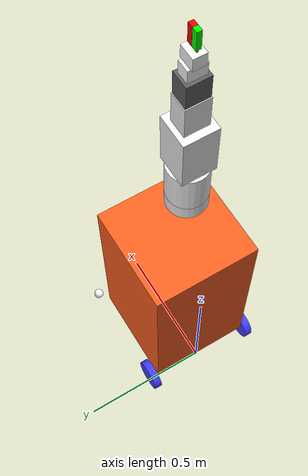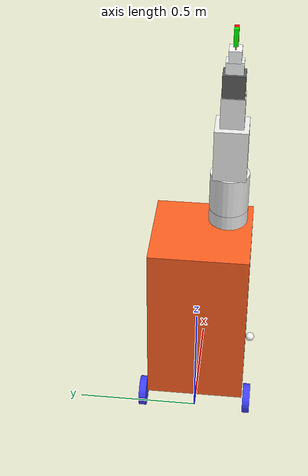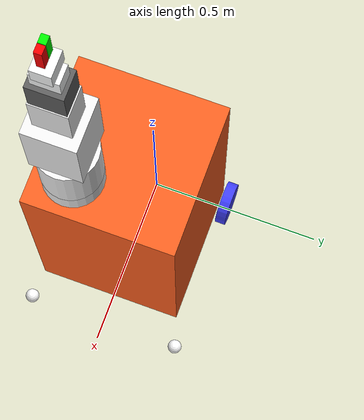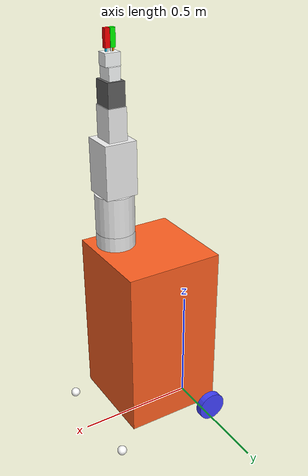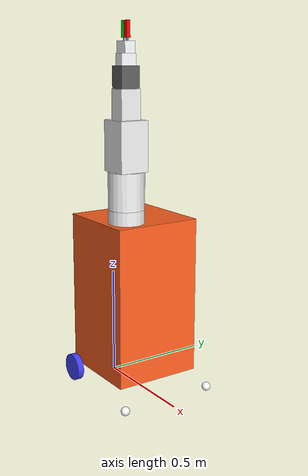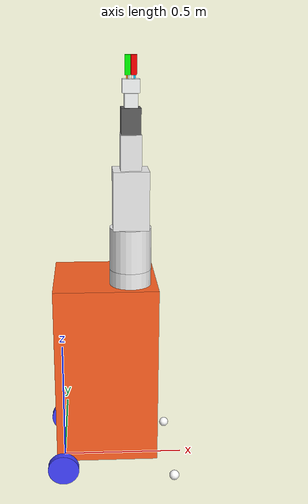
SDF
<sdf version='1.9'>
  <model name='robot_description'>
    <link name='base_link'>
      <inertial>
        <pose>0.1780559729414199 -1.243941050198591e-05 0.4466954508265594 0 0 0</pose>
        <mass>10.021246584</mass>
        <inertia>
          <ixx>0.57353490040801036</ixx>
          <ixy>1.20848873026793e-05</ixy>
          <ixz>0.0022778695219971561</ixz>
          <iyy>0.57402618883127721</iyy>
          <iyz>4.8841728212682492e-05</iyz>
          <izz>0.27587865607071232</izz>
        </inertia>
      </inertial>
      <collision name='base_link_fixed_joint_lump__chassis_collision'>
        <pose>0.1775 0 0.4475 0 0 0</pose>
        <geometry>
          <box>
            <size>0.405 0.405 0.72</size>
          </box>
        </geometry>
      </collision>
      <collision name='base_link_fixed_joint_lump__caster_wheel_collision_1'>
        <pose>0.45 0.2225 0.02000000000000001 0 0 0</pose>
        <geometry>
          <sphere>
            <radius>0.02</radius>
          </sphere>
        </geometry>
      </collision>
      <collision name='base_link_fixed_joint_lump__caster_wheel2_collision_2'>
        <pose>0.45 -0.2225 0.02000000000000001 0 0 0</pose>
        <geometry>
          <sphere>
            <radius>0.02</radius>
          </sphere>
        </geometry>
      </collision>
      <collision name='base_link_fixed_joint_lump__robot_link0_collision_3'>
        <pose>0.275 -0.1 0.8385 0 0 0</pose>
        <geometry>
          <cylinder>
            <length>0.062</length>
            <radius>0.080000000000000002</radius>
          </cylinder>
        </geometry>
      </collision>
      <visual name='base_link_fixed_joint_lump__chassis_visual'>
        <pose>0.1775 0 0.4475 0 0 0</pose>
        <geometry>
          <box>
            <size>0.405 0.405 0.72</size>
          </box>
        </geometry>
        <material>
          <diffuse>1 0.375 0.125 1</diffuse>
          <ambient>1 0.375 0.125 1</ambient>
        </material>
      </visual>
      <visual name='base_link_fixed_joint_lump__caster_wheel_visual_1'>
        <pose>0.45 0.2225 0.02000000000000001 0 0 0</pose>
        <geometry>
          <sphere>
            <radius>0.02</radius>
          </sphere>
        </geometry>
        <material>
          <diffuse>1 1 1 1</diffuse>
          <ambient>1 1 1 1</ambient>
        </material>
      </visual>
      <visual name='base_link_fixed_joint_lump__caster_wheel2_visual_2'>
        <pose>0.45 -0.2225 0.02000000000000001 0 0 0</pose>
        <geometry>
          <sphere>
            <radius>0.02</radius>
          </sphere>
        </geometry>
        <material>
          <diffuse>1 1 1 1</diffuse>
          <ambient>1 1 1 1</ambient>
        </material>
      </visual>
      <visual name='base_link_fixed_joint_lump__robot_link0_visual_3'>
        <pose>0.275 -0.1 0.8385 0 0 0</pose>
        <geometry>
          <cylinder>
            <length>0.062</length>
            <radius>0.080000000000000002</radius>
          </cylinder>
        </geometry>
        <material>
          <diffuse>0.941175 0.941175 0.941175 1</diffuse>
          <ambient>0.941175 0.941175 0.941175 1</ambient>
        </material>
      </visual>
    </link>
    <joint name='robot_joint1' type='revolute'>
      <pose relative_to='base_link'>0.275 -0.1 0.8695000000000001 0 0 0</pose>
      <parent>base_link</parent>
      <child>robot_link1</child>
      <axis>
        <xyz>0 0 1</xyz>
        <limit>
          <lower>-1.570796326794897</lower>
          <upper>1.570796326794897</upper>
          <effort>100</effort>
          <velocity>100</velocity>
        </limit>
        <dynamics>
          <spring_reference>0</spring_reference>
          <spring_stiffness>0</spring_stiffness>
          <damping>5.75</damping>
          <friction>3.48</friction>
        </dynamics>
      </axis>
    </joint>
    <link name='robot_link1'>
      <gravity>true</gravity>
      <pose relative_to='robot_joint1'>0 0 0 0 0 0</pose>
      <inertial>
        <pose>0 0 0.08275 0 0 0</pose>
        <mass>0.0033275750000000002</mass>
        <inertia>
          <ixx>1.291937926197917e-05</ixx>
          <ixy>0</ixy>
          <ixz>0</ixz>
          <iyy>1.291937926197917e-05</iyy>
          <iyz>0</iyz>
          <izz>1.064824e-05</izz>
        </inertia>
      </inertial>
      <collision name='robot_link1_collision'>
        <pose>0 0 0.08275 0 0 0</pose>
        <geometry>
          <cylinder>
            <length>0.16550000000000001</length>
            <radius>0.080000000000000002</radius>
          </cylinder>
        </geometry>
      </collision>
      <visual name='robot_link1_visual'>
        <pose>0 0 0.08275 0 0 0</pose>
        <geometry>
          <cylinder>
            <length>0.16550000000000001</length>
            <radius>0.080000000000000002</radius>
          </cylinder>
        </geometry>
        <material>
          <diffuse>0.941175 0.941175 0.941175 1</diffuse>
          <ambient>0.941175 0.941175 0.941175 1</ambient>
        </material>
      </visual>
    </link>
    <joint name='robot_joint2' type='revolute'>
      <pose relative_to='robot_link1'>0 0 0.1655 0 0 0</pose>
      <parent>robot_link1</parent>
      <child>robot_link2</child>
      <axis>
        <xyz>1 0 0</xyz>
        <limit>
          <lower>-1.570796327</lower>
          <upper>1.570796327</upper>
          <effort>5</effort>
          <velocity>1</velocity>
        </limit>
        <dynamics>
          <spring_reference>0</spring_reference>
          <spring_stiffness>0</spring_stiffness>
          <damping>5.75</damping>
          <friction>3.48</friction>
        </dynamics>
      </axis>
    </joint>
    <link name='robot_link2'>
      <gravity>true</gravity>
      <pose relative_to='robot_joint2'>0 0 0 0 0 0</pose>
      <inertial>
        <pose>0 0 0.1101 0 0 0</pose>
        <mass>0.0039893990000000002</mass>
        <inertia>
          <ixx>2.214289318956667e-05</ixx>
          <ixy>0</ixy>
          <ixz>0</ixz>
          <iyy>2.214289318956667e-05</iyy>
          <iyz>0</iyz>
          <izz>1.2046096664473331e-05</izz>
        </inertia>
      </inertial>
      <collision name='robot_link2_collision'>
        <pose>0 0 0.1101 0 0 0</pose>
        <geometry>
          <box>
            <size>0.1346 0.1346 0.2202</size>
          </box>
        </geometry>
      </collision>
      <visual name='robot_link2_visual'>
        <pose>0 0 0.1101 0 0 0</pose>
        <geometry>
          <box>
            <size>0.1346 0.1346 0.2202</size>
          </box>
        </geometry>
        <material>
          <diffuse>0.941175 0.941175 0.941175 1</diffuse>
          <ambient>0.941175 0.941175 0.941175 1</ambient>
        </material>
      </visual>
    </link>
    <joint name='robot_joint3' type='revolute'>
      <pose relative_to='robot_link2'>0 0 0.2202 0 0 0</pose>
      <parent>robot_link2</parent>
      <child>robot_link3</child>
      <axis>
        <xyz>1 0 0</xyz>
        <limit>
          <lower>-1.6499999999999999</lower>
          <upper>1.6499999999999999</upper>
          <effort>5</effort>
          <velocity>1</velocity>
        </limit>
        <dynamics>
          <spring_reference>0</spring_reference>
          <spring_stiffness>0</spring_stiffness>
          <damping>5.75</damping>
          <friction>3.48</friction>
        </dynamics>
      </axis>
    </joint>
    <link name='robot_link3'>
      <gravity>true</gravity>
      <pose relative_to='robot_joint3'>0 0 0 0 0 0</pose>
      <inertial>
        <pose>0 0 0.06494999999999999 0 0 0</pose>
        <mass>0.000957623</mass>
        <inertia>
          <ixx>2.066790637769167e-06</ixx>
          <ixy>0</ixy>
          <ixz>0</ixz>
          <iyy>1.827126329559166e-06</iyy>
          <iyz>0</iyz>
          <izz>1.2007602876233331e-06</izz>
        </inertia>
      </inertial>
      <collision name='robot_link3_collision'>
        <pose>0 0 0.06494999999999999 0 0 0</pose>
        <geometry>
          <box>
            <size>0.0776 0.095 0.1299</size>
          </box>
        </geometry>
      </collision>
      <visual name='robot_link3_visual'>
        <pose>0 0 0.06494999999999999 0 0 0</pose>
        <geometry>
          <box>
            <size>0.0776 0.095 0.1299</size>
          </box>
        </geometry>
        <material>
          <diffuse>0.941175 0.941175 0.941175 1</diffuse>
          <ambient>0.941175 0.941175 0.941175 1</ambient>
        </material>
      </visual>
    </link>
    <joint name='robot_joint4' type='revolute'>
      <pose relative_to='robot_link3'>0 0 0.1299 0 0 0</pose>
      <parent>robot_link3</parent>
      <child>robot_link4</child>
      <axis>
        <xyz>0 0 1</xyz>
        <limit>
          <lower>-3.1400000000000001</lower>
          <upper>3.1400000000000001</upper>
          <effort>5</effort>
          <velocity>1</velocity>
        </limit>
        <dynamics>
          <spring_reference>0</spring_reference>
          <spring_stiffness>0</spring_stiffness>
          <damping>5.75</damping>
          <friction>3.48</friction>
        </dynamics>
      </axis>
    </joint>
    <link name='robot_link4'>
      <gravity>true</gravity>
      <pose relative_to='robot_joint4'>0 0 0 0 0 0</pose>
      <inertial>
        <pose>0 0 0.04745 0 0 0</pose>
        <mass>0.00060795700000000001</mass>
        <inertia>
          <ixx>8.5847682772833327e-07</ixx>
          <ixy>0</ixy>
          <ixz>0</ixz>
          <iyy>7.1818061736166661e-07</iyy>
          <iyz>0</iyz>
          <izz>6.6411297482833318e-07</izz>
        </inertia>
      </inertial>
      <collision name='robot_link4_collision'>
        <pose>0 0 0.04745 0 0 0</pose>
        <geometry>
          <box>
            <size>0.0719 0.0891 0.0949</size>
          </box>
        </geometry>
      </collision>
      <visual name='robot_link4_visual'>
        <pose>0 0 0.04745 0 0 0</pose>
        <geometry>
          <box>
            <size>0.0719 0.0891 0.0949</size>
          </box>
        </geometry>
        <material>
          <diffuse>0.36765 0.36765 0.36765 1</diffuse>
          <ambient>0.36765 0.36765 0.36765 1</ambient>
        </material>
      </visual>
    </link>
    <joint name='robot_joint5' type='revolute'>
      <pose relative_to='robot_link4'>0 0 0.0949 0 0 0</pose>
      <parent>robot_link4</parent>
      <child>robot_link5</child>
      <axis>
        <xyz>1 0 0</xyz>
        <limit>
          <lower>-1.570796327</lower>
          <upper>1.570796327</upper>
          <effort>5</effort>
          <velocity>1</velocity>
        </limit>
        <dynamics>
          <spring_reference>0</spring_reference>
          <spring_stiffness>0</spring_stiffness>
          <damping>5.75</damping>
          <friction>3.48</friction>
        </dynamics>
      </axis>
    </joint>
    <link name='robot_link5'>
      <gravity>true</gravity>
      <pose relative_to='robot_joint5'>0 0 0 0 0 0</pose>
      <inertial>
        <pose>0 0 0.0255 0 0 0</pose>
        <mass>0.00017136000000000001</mass>
        <inertia>
          <ixx>1.0711428e-07</ixx>
          <ixy>0</ixy>
          <ixz>0</ixz>
          <iyy>7.0043399999999996e-08</iyy>
          <iyz>0</iyz>
          <izz>1.0287312e-07</izz>
        </inertia>
      </inertial>
      <collision name='robot_link5_collision'>
        <pose>0 0 0.0255 0 0 0</pose>
        <geometry>
          <box>
            <size>0.048 0.07 0.051</size>
          </box>
        </geometry>
      </collision>
      <visual name='robot_link5_visual'>
        <pose>0 0 0.0255 0 0 0</pose>
        <geometry>
          <box>
            <size>0.048 0.07 0.051</size>
          </box>
        </geometry>
        <material>
          <diffuse>0.9902 1 1 1</diffuse>
          <ambient>0.9902 1 1 1</ambient>
        </material>
      </visual>
    </link>
    <joint name='robot_joint6' type='revolute'>
      <pose relative_to='robot_link5'>0 0 0.051 0 0 0</pose>
      <parent>robot_link5</parent>
      <child>robot_link6</child>
      <axis>
        <xyz>0 0 1</xyz>
        <limit>
          <lower>-3</lower>
          <upper>3</upper>
          <effort>5</effort>
          <velocity>1</velocity>
        </limit>
        <dynamics>
          <spring_reference>0</spring_reference>
          <spring_stiffness>0</spring_stiffness>
          <damping>5.75</damping>
          <friction>3.48</friction>
        </dynamics>
      </axis>
    </joint>
    <link name='robot_link6'>
      <gravity>true</gravity>
      <pose relative_to='robot_joint6'>0 0 0 0 0 0</pose>
      <inertial>
        <pose>0 0 0.0245 0 0 0</pose>
        <mass>0.000151743</mass>
        <inertia>
          <ixx>6.0722490500000012e-08</ixx>
          <ixy>-4.1322064518930943e-18</ixy>
          <ixz>0</ixz>
          <iyy>8.086940861000002e-08</iyy>
          <iyz>0</iyz>
          <izz>8.0869408610000007e-08</izz>
        </inertia>
      </inertial>
      <collision name='robot_link6_fixed_joint_lump__robot_hand_collision'>
        <pose>0 0 0.0245 0 0 1.570796327</pose>
        <geometry>
          <box>
            <size>0.049 0.0632 0.049</size>
          </box>
        </geometry>
      </collision>
      <visual name='robot_link6_fixed_joint_lump__robot_hand_visual'>
        <pose>0 0 0.0245 0 0 1.570796327</pose>
        <geometry>
          <box>
            <size>0.049 0.0632 0.049</size>
          </box>
        </geometry>
        <material>
          <diffuse>0.9902 1 1 1</diffuse>
          <ambient>0.9902 1 1 1</ambient>
        </material>
      </visual>
    </link>
    <joint name='Pivot_Arm_Gripper_Idol_Joint' type='revolute'>
      <pose relative_to='robot_link6'>0.006999999999999999 1.435723935572231e-12 0.0415 0 0 1.570796327</pose>
      <parent>robot_link6</parent>
      <child>Pivot_Arm_Gripper_Idol</child>
      <axis>
        <xyz>1 0 0</xyz>
        <limit>
          <lower>-1.5707</lower>
          <upper>1.5707</upper>
          <effort>5</effort>
          <velocity>1</velocity>
        </limit>
        <dynamics>
          <spring_reference>0</spring_reference>
          <spring_stiffness>0</spring_stiffness>
          <damping>5.75</damping>
          <friction>3.48</friction>
        </dynamics>
      </axis>
    </joint>
    <link name='Pivot_Arm_Gripper_Idol'>
      <gravity>true</gravity>
      <pose relative_to='Pivot_Arm_Gripper_Idol_Joint'>0 0 0 0 0 0</pose>
      <inertial>
        <pose>0 0 0.01995 0 0 0</pose>
        <mass>1.4360000000000001e-06</mass>
        <inertia>
          <ixx>1.9481853e-10</ixx>
          <ixy>0</ixy>
          <ixz>0</ixz>
          <iyy>1.9481853e-10</iyy>
          <iyz>0</iyz>
          <izz>8.6159999999999996e-12</izz>
        </inertia>
      </inertial>
      <collision name='Pivot_Arm_Gripper_Idol_collision'>
        <pose>0 0 0.01995 0 0 0</pose>
        <geometry>
          <box>
            <size>0.006 0.006 0.0399</size>
          </box>
        </geometry>
      </collision>
      <visual name='Pivot_Arm_Gripper_Idol_visual'>
        <pose>0 0 0.01995 0 0 0</pose>
        <geometry>
          <box>
            <size>0.006 0.006 0.0399</size>
          </box>
        </geometry>
        <material>
          <diffuse>0.9902 1 1 1</diffuse>
          <ambient>0.9902 1 1 1</ambient>
        </material>
      </visual>
    </link>
    <joint name='Pivot_Arm_Gripper_Servo_Joint' type='revolute'>
      <pose relative_to='robot_link6'>-0.006999999999999999 -1.435723935572231e-12 0.0415 0 0 1.570796327</pose>
      <parent>robot_link6</parent>
      <child>Pivot_Arm_Gripper_Servo</child>
      <axis>
        <xyz>1 0 0</xyz>
        <limit>
          <lower>-1.5707</lower>
          <upper>1.5707</upper>
          <effort>5</effort>
          <velocity>1</velocity>
        </limit>
        <dynamics>
          <spring_reference>0</spring_reference>
          <spring_stiffness>0</spring_stiffness>
          <damping>5.75</damping>
          <friction>3.48</friction>
        </dynamics>
      </axis>
    </joint>
    <link name='Pivot_Arm_Gripper_Servo'>
      <gravity>true</gravity>
      <pose relative_to='Pivot_Arm_Gripper_Servo_Joint'>0 0 0 0 0 0</pose>
      <inertial>
        <pose>0 0 0.01995 0 0 0</pose>
        <mass>1.4360000000000001e-06</mass>
        <inertia>
          <ixx>1.9481853e-10</ixx>
          <ixy>0</ixy>
          <ixz>0</ixz>
          <iyy>1.9481853e-10</iyy>
          <iyz>0</iyz>
          <izz>8.6159999999999996e-12</izz>
        </inertia>
      </inertial>
      <collision name='Pivot_Arm_Gripper_Servo_collision'>
        <pose>0 0 0.01995 0 0 0</pose>
        <geometry>
          <box>
            <size>0.006 0.006 0.0399</size>
          </box>
        </geometry>
      </collision>
      <visual name='Pivot_Arm_Gripper_Servo_visual'>
        <pose>0 0 0.01995 0 0 0</pose>
        <geometry>
          <box>
            <size>0.006 0.006 0.0399</size>
          </box>
        </geometry>
        <material>
          <diffuse>0.9902 1 1 1</diffuse>
          <ambient>0.9902 1 1 1</ambient>
        </material>
      </visual>
    </link>
    <joint name='robot_finger_joint1' type='revolute'>
      <pose relative_to='robot_link6'>-0.014 -2.871447871144461e-12 0.022 0 0 1.570796327</pose>
      <parent>robot_link6</parent>
      <child>Gripper_Servo_Gear</child>
      <axis>
        <xyz>1 0 0</xyz>
        <limit>
          <lower>-1.5707</lower>
          <upper>0</upper>
          <effort>5</effort>
          <velocity>1</velocity>
        </limit>
        <dynamics>
          <spring_reference>0</spring_reference>
          <spring_stiffness>0</spring_stiffness>
          <damping>5.75</damping>
          <friction>3.48</friction>
        </dynamics>
      </axis>
    </joint>
    <link name='Gripper_Servo_Gear'>
      <gravity>true</gravity>
      <pose relative_to='robot_finger_joint1'>0 0 0 0 0 0</pose>
      <inertial>
        <pose>0 0 0.01995 0 0 0</pose>
        <mass>1.4360000000000001e-06</mass>
        <inertia>
          <ixx>1.9481853e-10</ixx>
          <ixy>0</ixy>
          <ixz>0</ixz>
          <iyy>1.9481853e-10</iyy>
          <iyz>0</iyz>
          <izz>8.6159999999999996e-12</izz>
        </inertia>
      </inertial>
      <collision name='Gripper_Servo_Gear_collision'>
        <pose>0 0 0.01995 0 0 0</pose>
        <geometry>
          <box>
            <size>0.006 0.006 0.0399</size>
          </box>
        </geometry>
      </collision>
      <visual name='Gripper_Servo_Gear_visual'>
        <pose>0 0 0.01995 0 0 0</pose>
        <geometry>
          <box>
            <size>0.006 0.006 0.0399</size>
          </box>
        </geometry>
        <material>
          <diffuse>1 0.553925 0.0392163 1</diffuse>
          <ambient>1 0.553925 0.0392163 1</ambient>
        </material>
      </visual>
    </link>
    <joint name='Tip_Gripper_Servo_Joint' type='revolute'>
      <pose relative_to='Gripper_Servo_Gear'>0 0 0.04 0 0 0</pose>
      <parent>Gripper_Servo_Gear</parent>
      <child>robot_rightfinger</child>
      <axis>
        <xyz>1 0 0</xyz>
        <limit>
          <lower>-1.5707</lower>
          <upper>1.5707</upper>
          <effort>5</effort>
          <velocity>1</velocity>
        </limit>
        <dynamics>
          <spring_reference>0</spring_reference>
          <spring_stiffness>0</spring_stiffness>
          <damping>5.75</damping>
          <friction>3.48</friction>
        </dynamics>
      </axis>
    </joint>
    <link name='robot_rightfinger'>
      <gravity>true</gravity>
      <pose relative_to='Tip_Gripper_Servo_Joint'>0 0 0 0 0 0</pose>
      <inertial>
        <pose>0 0.003 0.035 0 0 0</pose>
        <mass>2.6460000000000001e-05</mass>
        <inertia>
          <ixx>1.1776905e-08</ixx>
          <ixy>0</ixy>
          <ixz>0</ixz>
          <iyy>1.151892e-08</iyy>
          <iyz>0</iyz>
          <izz>1.6868249999999999e-09</izz>
        </inertia>
      </inertial>
      <collision name='robot_rightfinger_collision'>
        <pose>0 -0.003 0.035 0 0 0</pose>
        <geometry>
          <box>
            <size>0.018 0.021 0.07</size>
          </box>
        </geometry>
      </collision>
      <visual name='robot_rightfinger_visual'>
        <pose>0 -0.003 0.035 0 0 0</pose>
        <geometry>
          <box>
            <size>0.018 0.021 0.07</size>
          </box>
        </geometry>
        <material>
          <diffuse>0 1 0 1</diffuse>
          <ambient>0 1 0 1</ambient>
        </material>
      </visual>
    </link>
    <joint name='robot_finger_joint2' type='revolute'>
      <pose relative_to='robot_link6'>0.014 2.871447871144461e-12 0.022 0 0 1.570796327</pose>
      <parent>robot_link6</parent>
      <child>Gripper_Idol_Gear</child>
      <axis>
        <xyz>1 0 0</xyz>
        <limit>
          <lower>-1.5707</lower>
          <upper>1.5707</upper>
          <effort>5</effort>
          <velocity>1</velocity>
        </limit>
        <dynamics>
          <spring_reference>0</spring_reference>
          <spring_stiffness>0</spring_stiffness>
          <damping>5.75</damping>
          <friction>3.48</friction>
        </dynamics>
      </axis>
    </joint>
    <link name='Gripper_Idol_Gear'>
      <gravity>true</gravity>
      <pose relative_to='robot_finger_joint2'>0 0 0 0 0 0</pose>
      <inertial>
        <pose>0 0 0.01995 0 0 0</pose>
        <mass>1.4360000000000001e-06</mass>
        <inertia>
          <ixx>1.9481853e-10</ixx>
          <ixy>0</ixy>
          <ixz>0</ixz>
          <iyy>1.9481853e-10</iyy>
          <iyz>0</iyz>
          <izz>8.6159999999999996e-12</izz>
        </inertia>
      </inertial>
      <collision name='Gripper_Idol_Gear_collision'>
        <pose>0 0 0.01995 0 0 0</pose>
        <geometry>
          <box>
            <size>0.006 0.006 0.0399</size>
          </box>
        </geometry>
      </collision>
      <visual name='Gripper_Idol_Gear_visual'>
        <pose>0 0 0.01995 0 0 0</pose>
        <geometry>
          <box>
            <size>0.006 0.006 0.0399</size>
          </box>
        </geometry>
        <material>
          <diffuse>0.07353 0.808825 1 1</diffuse>
          <ambient>0.07353 0.808825 1 1</ambient>
        </material>
      </visual>
    </link>
    <joint name='Tip_Gripper_Idol_Joint' type='revolute'>
      <pose relative_to='Gripper_Idol_Gear'>0 0 0.04 0 0 0</pose>
      <parent>Gripper_Idol_Gear</parent>
      <child>robot_leftfinger</child>
      <axis>
        <xyz>1 0 0</xyz>
        <limit>
          <lower>-1.5707</lower>
          <upper>1.5707</upper>
          <effort>5</effort>
          <velocity>1</velocity>
        </limit>
        <dynamics>
          <spring_reference>0</spring_reference>
          <spring_stiffness>0</spring_stiffness>
          <damping>5.75</damping>
          <friction>3.48</friction>
        </dynamics>
      </axis>
    </joint>
    <link name='robot_leftfinger'>
      <gravity>true</gravity>
      <pose relative_to='Tip_Gripper_Idol_Joint'>0 0 0 0 0 0</pose>
      <inertial>
        <pose>0 0 0.035 0 0 0</pose>
        <mass>2.6460000000000001e-05</mass>
        <inertia>
          <ixx>1.1776905e-08</ixx>
          <ixy>0</ixy>
          <ixz>0</ixz>
          <iyy>1.151892e-08</iyy>
          <iyz>0</iyz>
          <izz>1.6868249999999999e-09</izz>
        </inertia>
      </inertial>
      <collision name='robot_leftfinger_collision'>
        <pose>0 0.003 0.035 0 0 0</pose>
        <geometry>
          <box>
            <size>0.018 0.021 0.07</size>
          </box>
        </geometry>
      </collision>
      <visual name='robot_leftfinger_visual'>
        <pose>0 0.003 0.035 0 0 0</pose>
        <geometry>
          <box>
            <size>0.018 0.021 0.07</size>
          </box>
        </geometry>
        <material>
          <diffuse>1 0 0 1</diffuse>
          <ambient>1 0 0 1</ambient>
        </material>
      </visual>
    </link>
    <joint name='left_wheel_joint' type='revolute'>
      <pose relative_to='base_link'>0 0.2225 0.0625 -1.570796326794896 0 0</pose>
      <parent>base_link</parent>
      <child>left_wheel</child>
      <axis>
        <xyz>0 0 1</xyz>
        <limit>
          <lower>-10000000000000000</lower>
          <upper>10000000000000000</upper>
        </limit>
        <dynamics>
          <spring_reference>0</spring_reference>
          <spring_stiffness>0</spring_stiffness>
          <damping>21.75</damping>
          <friction>3.48</friction>
        </dynamics>
      </axis>
    </joint>
    <link name='left_wheel'>
      <pose relative_to='left_wheel_joint'>0 0 0 0 0 0</pose>
      <inertial>
        <pose>0 0 0 0 0 0</pose>
        <mass>0.050000000000000003</mass>
        <inertia>
          <ixx>5.2578124999999999e-05</ixx>
          <ixy>0</ixy>
          <ixz>0</ixz>
          <iyy>5.2578124999999999e-05</iyy>
          <iyz>0</iyz>
          <izz>9.7656250000000005e-05</izz>
        </inertia>
      </inertial>
      <collision name='left_wheel_collision'>
        <pose>0 0 0 0 0 0</pose>
        <geometry>
          <sphere>
            <radius>0.0625</radius>
          </sphere>
        </geometry>
      </collision>
      <visual name='left_wheel_visual'>
        <pose>0 0 0 0 0 0</pose>
        <geometry>
          <cylinder>
            <length>0.029999999999999999</length>
            <radius>0.0625</radius>
          </cylinder>
        </geometry>
        <material>
          <diffuse>0.25 0.25 1 1</diffuse>
          <ambient>0.25 0.25 1 1</ambient>
        </material>
      </visual>
    </link>
    <joint name='right_wheel_joint' type='revolute'>
      <pose relative_to='base_link'>0 -0.2225 0.0625 1.570796326794896 0 0</pose>
      <parent>base_link</parent>
      <child>right_wheel</child>
      <axis>
        <xyz>0 0 -1</xyz>
        <limit>
          <lower>-10000000000000000</lower>
          <upper>10000000000000000</upper>
        </limit>
        <dynamics>
          <spring_reference>0</spring_reference>
          <spring_stiffness>0</spring_stiffness>
          <damping>21.75</damping>
          <friction>3.48</friction>
        </dynamics>
      </axis>
    </joint>
    <link name='right_wheel'>
      <pose relative_to='right_wheel_joint'>0 0 0 0 0 0</pose>
      <inertial>
        <pose>0 0 0 0 0 0</pose>
        <mass>0.050000000000000003</mass>
        <inertia>
          <ixx>5.2578124999999999e-05</ixx>
          <ixy>0</ixy>
          <ixz>0</ixz>
          <iyy>5.2578124999999999e-05</iyy>
          <iyz>0</iyz>
          <izz>9.7656250000000005e-05</izz>
        </inertia>
      </inertial>
      <collision name='right_wheel_collision'>
        <pose>0 0 0 0 0 0</pose>
        <geometry>
          <sphere>
            <radius>0.0625</radius>
          </sphere>
        </geometry>
      </collision>
      <visual name='right_wheel_visual'>
        <pose>0 0 0 0 0 0</pose>
        <geometry>
          <cylinder>
            <length>0.029999999999999999</length>
            <radius>0.0625</radius>
          </cylinder>
        </geometry>
        <material>
          <diffuse>0.25 0.25 1 1</diffuse>
          <ambient>0.25 0.25 1 1</ambient>
        </material>
      </visual>
    </link>
    <frame name='base_footprint_joint' attached_to='base_link'>
      <pose>0 0 0 0 -0 0</pose>
    </frame>
    <frame name='base_footprint' attached_to='base_footprint_joint'/>
    <frame name='caster_wheel_joint' attached_to='chassis'>
      <pose>0.475 0.2225 -0.0675 0 -0 0</pose>
    </frame>
    <frame name='caster_wheel' attached_to='caster_wheel_joint'/>
    <frame name='caster_wheel_joint2' attached_to='chassis'>
      <pose>0.475 -0.2225 -0.0675 0 -0 0</pose>
    </frame>
    <frame name='caster_wheel2' attached_to='caster_wheel_joint2'/>
    <frame name='robot_joint0' attached_to='chassis'>
      <pose>0.3 -0.1 0.72 0 -0 0</pose>
    </frame>
    <frame name='robot_link0' attached_to='robot_joint0'/>
    <frame name='robot_camera_joint' attached_to='robot_hand'>
      <pose>0.0645 0 0.0685 0 -0 1.5708</pose>
    </frame>
    <frame name='robot_camera' attached_to='robot_camera_joint'/>
    <frame name='robot_hand_joint' attached_to='robot_link7'>
      <pose>0 0 0 0 -0 1.5708</pose>
    </frame>
    <frame name='robot_hand' attached_to='robot_hand_joint'/>
    <frame name='robot_joint7' attached_to='robot_link6'>
      <pose>0 0 0 0 -0 0</pose>
    </frame>
    <frame name='robot_link7' attached_to='robot_joint7'/>
    <frame name='chassis_joint' attached_to='floor'>
      <pose>-0.025 0 0.025 0 -0 0</pose>
    </frame>
    <frame name='chassis' attached_to='chassis_joint'/>
    <frame name='floor_joint' attached_to='base_link'>
      <pose>0 0 0.0625 0 -0 0</pose>
    </frame>
    <frame name='floor' attached_to='floor_joint'/>

    <!-- Odometry Plugin -->
    <plugin
      filename="ignition-gazebo-odometry-publisher-system"
      name="ignition::gazebo::systems::OdometryPublisher">
      <odom_publish_frequency>50</odom_publish_frequency>
      <odom_topic>/odom</odom_topic>
      <odom_frame>odom</odom_frame>
      <robot_base_frame>base_link</robot_base_frame>
    </plugin>

    <!-- Diff Drive Plugin -->
    <plugin filename="libignition-gazebo-diff-drive-system.so" name="ignition::gazebo::systems::DiffDrive">
      <left_joint>left_wheel_joint</left_joint>
      <right_joint>right_wheel_joint</right_joint>
      <wheel_separation>0.445</wheel_separation>
      <wheel_radius>0.0625</wheel_radius>
      <odom_publish_frequency>0</odom_publish_frequency>
      <topic>cmd_vel</topic>
      <frame_id>odom_diff</frame_id>
      <child_frame_id>base_footprint</child_frame_id>
    </plugin>

    <!-- Joint state publisher -->
    <plugin filename="libignition-gazebo-joint-state-publisher-system.so" name="ignition::gazebo::systems::JointStatePublisher">
    </plugin>

  </model>
</sdf>
